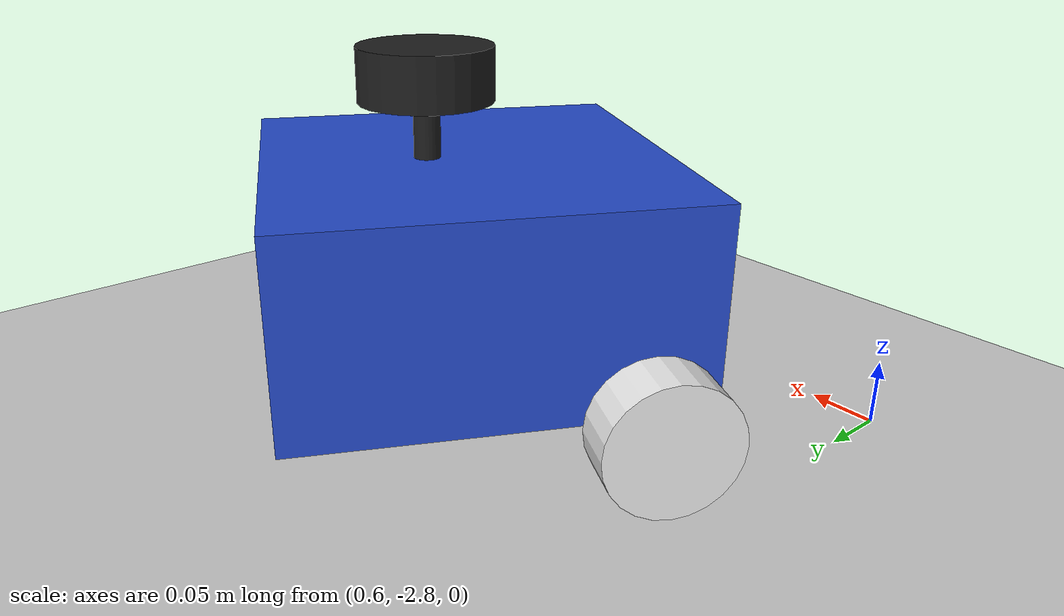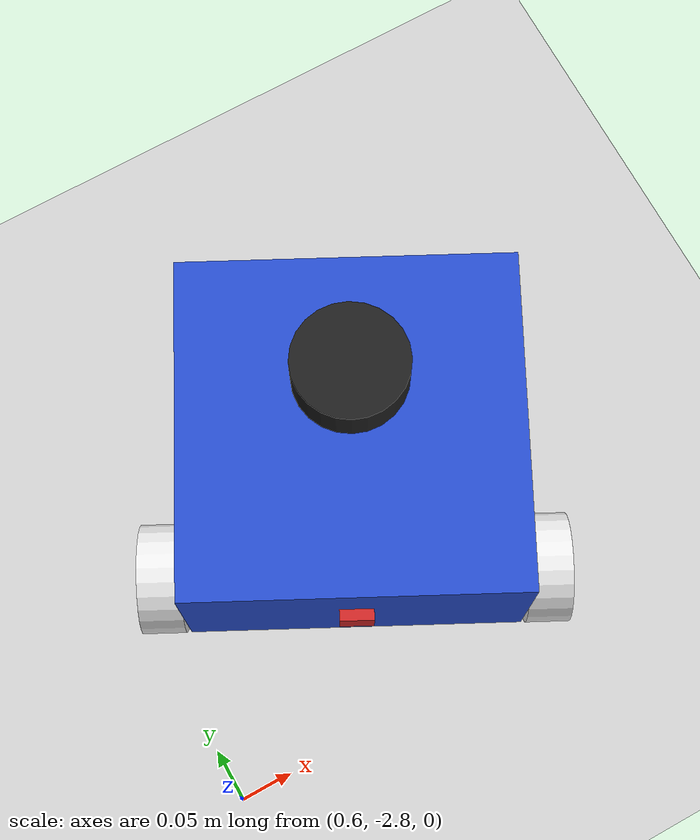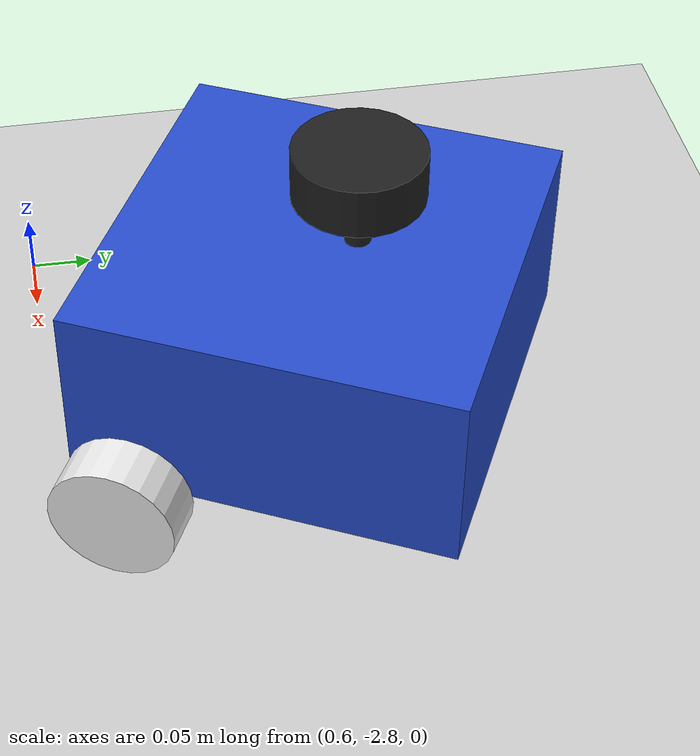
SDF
<sdf version="1.7">
 <world name="default">
  <light name="sun" type="directional">
   <pose>0 0 10 0 -0 0</pose>
   <diffuse>0.8 0.8 0.8 1</diffuse>
   <specular>0.2 0.2 0.2 1</specular>
   <attenuation>
    <range>1000</range>
    <constant>0.9</constant>
    <linear>0.01</linear>
    <quadratic>0.001</quadratic>
   </attenuation>
   <direction>-0.5 0.1 -0.9</direction>
   <spot><inner_angle>0</inner_angle><outer_angle>0</outer_angle><falloff>0</falloff></spot>
  </light>
  <model name="ground_plane">
   <static>1</static>
   <link name="link">
    <collision name="collision">
     <geometry><plane><normal>0 0 1</normal><size>100 100</size></plane></geometry>
     <surface>
      <contact><collide_bitmask>65535</collide_bitmask></contact>
      <friction><ode><mu>100</mu><mu2>50</mu2></ode></friction>
     </surface>
    </collision>
    <visual name="visual">
     <cast_shadows>0</cast_shadows>
     <geometry><plane><normal>0 0 1</normal><size>100 100</size></plane></geometry>
     <material>
      <script><uri>file://media/materials/scripts/gazebo.material</uri><name>Gazebo/Grey</name></script>
     </material>
    </visual>
   </link>
  </model>
  <gravity>0 0 -9.8</gravity>
  <magnetic_field>6e-06 2.3e-05 -4.2e-05</magnetic_field>
  <atmosphere type="adiabatic"/>
  <physics type="ode">
   <max_step_size>0.001</max_step_size>
   <real_time_factor>1</real_time_factor>
   <real_time_update_rate>1000</real_time_update_rate>
  </physics>
  <scene><ambient>0.4 0.4 0.4 1</ambient><background>0.7 0.7 0.7 1</background><shadows>1</shadows></scene>
  <audio><device>default</device></audio>
  <spherical_coordinates>
   <surface_model>EARTH_WGS84</surface_model>
   <latitude_deg>0</latitude_deg>
   <longitude_deg>0</longitude_deg>
   <elevation>0</elevation>
   <heading_deg>0</heading_deg>
  </spherical_coordinates>
  <model name="robot_first">
   <link name="base_link">
    <inertial>
     <pose>0.113556 0 0.065222 0 -0 0</pose>
     <mass>0.9</mass>
     <inertia>
      <ixx>0.00854169</ixx>
      <ixy>0</ixy>
      <ixz>-0.00154569</ixz>
      <iyy>0.0104247</iyy>
      <iyz>0</iyz>
      <izz>0.00980802</izz>
     </inertia>
    </inertial>
    <collision name="base_link_fixed_joint_lump__chassis_collision">
     <pose>0.15 0 0.075 0 -0 0</pose>
     <geometry><box><size>0.3 0.3 0.15</size></box></geometry>
    </collision>
    <collision name="base_link_fixed_joint_lump__caster_wheel_collision_1">
     <pose>0.05 0 0 0 -0 0</pose>
     <geometry><sphere><radius>0.05</radius></sphere></geometry>
     <surface><friction><ode><mu>0.001</mu><mu2>0.001</mu2></ode></friction></surface>
    </collision>
    <collision name="base_link_fixed_joint_lump__laser_frame_collision_2">
     <pose>0.122 0 0.212 0 -0 0</pose>
     <geometry><cylinder><length>0.04</length><radius>0.05</radius></cylinder></geometry>
    </collision>
    <visual name="base_link_fixed_joint_lump__chassis_visual">
     <pose>0.15 0 0.075 0 -0 0</pose>
     <geometry><box><size>0.3 0.3 0.15</size></box></geometry>
     <material>
      <script><name>Gazebo/Blue</name><uri>file://media/materials/scripts/gazebo.material</uri></script>
     </material>
    </visual>
    <visual name="base_link_fixed_joint_lump__camera_link_visual_1">
     <pose>0.305 0 0.08 0 -0 0</pose>
     <geometry><box><size>0.01 0.03 0.03</size></box></geometry>
     <material>
      <script><name>Gazebo/Red</name><uri>file://media/materials/scripts/gazebo.material</uri></script>
     </material>
    </visual>
    <visual name="base_link_fixed_joint_lump__caster_wheel_visual_2">
     <pose>0.05 0 0 0 -0 0</pose>
     <geometry><sphere><radius>0.05</radius></sphere></geometry>
     <material>
      <script><name>Gazebo/White</name><uri>file://media/materials/scripts/gazebo.material</uri></script>
     </material>
    </visual>
    <visual name="base_link_fixed_joint_lump__laser_frame_visual_3">
     <pose>0.122 0 0.212 0 -0 0</pose>
     <geometry><cylinder><length>0.04</length><radius>0.05</radius></cylinder></geometry>
     <material>
      <script><name>Gazebo/Black</name><uri>file://media/materials/scripts/gazebo.material</uri></script>
     </material>
    </visual>
    <visual name="base_link_fixed_joint_lump__laser_frame_visual_4">
     <pose>0.122 0 0.162 0 -0 0</pose>
     <geometry><cylinder><length>0.1</length><radius>0.01</radius></cylinder></geometry>
     <material>
      <script><name>Gazebo/Black</name><uri>file://media/materials/scripts/gazebo.material</uri></script>
     </material>
    </visual>
    <sensor name="camera" type="camera">
     <visualize>1</visualize>
     <update_rate>10</update_rate>
     <camera>
      <horizontal_fov>1.089</horizontal_fov>
      <image><format>R8G8B8</format><width>640</width><height>480</height></image>
      <clip><near>0.05</near><far>8</far></clip>
     </camera>
     <plugin name="camera_controller" filename="libgazebo_ros_camera.so">
      <frame_name>camera_link_optical</frame_name>
     </plugin>
     <pose>0.305 0 0.08 0 -0 0</pose>
    </sensor>
    <sensor name="laser" type="ray">
     <visualize>1</visualize>
     <update_rate>10</update_rate>
     <ray>
      <scan>
       <horizontal>
        <samples>360</samples>
        <min_angle>-3.14</min_angle>
        <max_angle>3.14</max_angle>
        <resolution>1</resolution>
       </horizontal>
       <vertical><samples>1</samples><min_angle>0</min_angle><max_angle>0</max_angle></vertical>
      </scan>
      <range><min>0.3</min><max>12</max></range>
     </ray>
     <plugin name="laser_controller" filename="libgazebo_ros_ray_sensor.so">
      <ros><argument>~/out:=scan</argument></ros>
      <output_type>sensor_msgs/LaserScan</output_type>
      <frame_name>laser_frame</frame_name>
     </plugin>
     <pose>0.122 0 0.212 0 -0 0</pose>
    </sensor>
   </link>
   <joint name="left_wheel_joint" type="revolute">
    <pose relative_to="base_link">0.25 0.175 0 -1.5708 0 0</pose>
    <parent>base_link</parent>
    <child>left_wheel</child>
    <axis>
     <xyz>0 0 1</xyz>
     <limit><lower>-1e+16</lower><upper>1e+16</upper></limit>
     <dynamics><spring_reference>0</spring_reference><spring_stiffness>0</spring_stiffness></dynamics>
    </axis>
   </joint>
   <link name="left_wheel">
    <pose relative_to="left_wheel_joint">0 0 0 0 -0 0</pose>
    <inertial>
     <mass>0.15</mass>
     <inertia>
      <ixx>0.00011375</ixx>
      <ixy>0</ixy>
      <ixz>0</ixz>
      <iyy>0.00011375</iyy>
      <iyz>0</iyz>
      <izz>0.0001875</izz>
     </inertia>
    </inertial>
    <collision name="left_wheel_collision">
     <geometry><cylinder><length>0.04</length><radius>0.05</radius></cylinder></geometry>
    </collision>
    <visual name="left_wheel_visual">
     <geometry><cylinder><length>0.04</length><radius>0.05</radius></cylinder></geometry>
     <material>
      <script><name>Gazebo/White</name><uri>file://media/materials/scripts/gazebo.material</uri></script>
     </material>
    </visual>
   </link>
   <joint name="right_wheel_joint" type="revolute">
    <pose relative_to="base_link">0.25 -0.175 0 1.5708 -0 0</pose>
    <parent>base_link</parent>
    <child>right_wheel</child>
    <axis>
     <xyz>0 0 -1</xyz>
     <limit><lower>-1e+16</lower><upper>1e+16</upper></limit>
     <dynamics><spring_reference>0</spring_reference><spring_stiffness>0</spring_stiffness></dynamics>
    </axis>
   </joint>
   <link name="right_wheel">
    <pose relative_to="right_wheel_joint">0 0 0 0 -0 0</pose>
    <inertial>
     <mass>0.15</mass>
     <inertia>
      <ixx>0.00011375</ixx>
      <ixy>0</ixy>
      <ixz>0</ixz>
      <iyy>0.00011375</iyy>
      <iyz>0</iyz>
      <izz>0.0001875</izz>
     </inertia>
    </inertial>
    <collision name="right_wheel_collision">
     <geometry><cylinder><length>0.04</length><radius>0.05</radius></cylinder></geometry>
    </collision>
    <visual name="right_wheel_visual">
     <geometry><cylinder><length>0.04</length><radius>0.05</radius></cylinder></geometry>
     <material>
      <script><name>Gazebo/White</name><uri>file://media/materials/scripts/gazebo.material</uri></script>
     </material>
    </visual>
   </link>
   <plugin name="gazebo_ros_control" filename="libgazebo_ros_control.so">
    <robotSimType>sr_gazebo_sim/SrGazeboHWSim</robotSimType>
   </plugin>
   <static>0</static>
   <plugin name="diff_drive" filename="libgazebo_ros_diff_drive.so">
    <left_joint>left_wheel_joint</left_joint>
    <right_joint>right_wheel_joint</right_joint>
    <wheel_separation>0.35</wheel_separation>
    <wheel_diameter>0.1</wheel_diameter>
    <element2_link_joint>element2_link_joint</element2_link_joint>
    <max_wheel_torque>200</max_wheel_torque>
    <max_acceleration>10.0</max_acceleration>
    <odometry_frame>odom</odometry_frame>
    <robot_base_frame>base_link</robot_base_frame>
    <robot_base_frame_2>base_link_2</robot_base_frame_2>
    <publish_odom>1</publish_odom>
    <publish_odom_tf>1</publish_odom_tf>
    <publish_wheel_tf>1</publish_wheel_tf>
   </plugin>
   <pose>0.901214 -2.45004 0.05 1e-06 -2e-06 -2.04407</pose>
  </model>
 </world>
</sdf>
